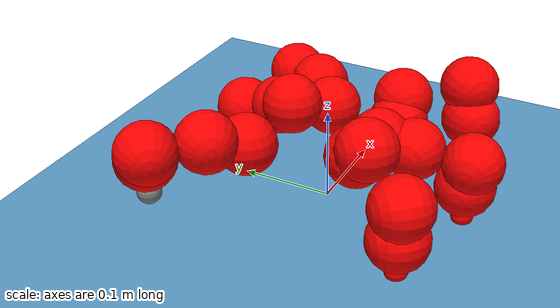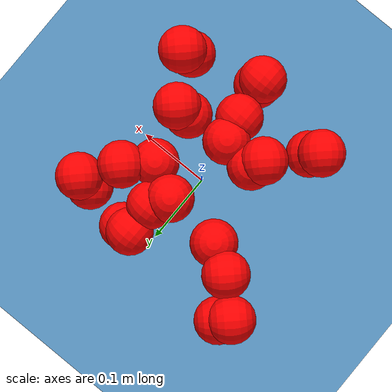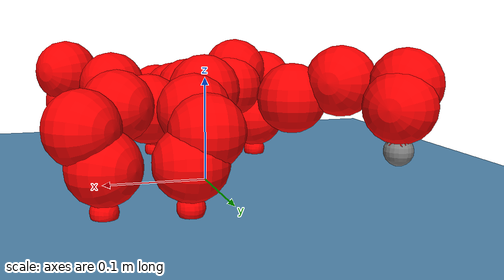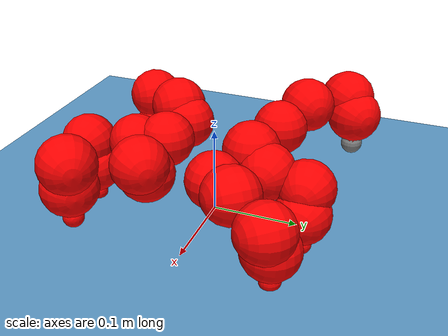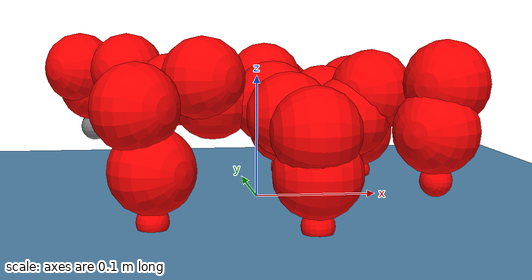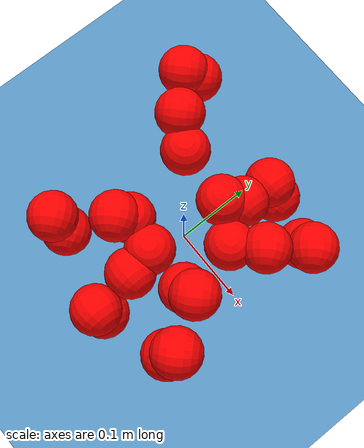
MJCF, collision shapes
<mujoco model="Golem">
  <compiler angle="radian" assetdir="assets" balanceinertia="true" inertiafromgeom="false"/>

  <option timestep="0.005" density="1.2" viscosity="2e-05"/>

  <size nkey="1"/>

  <visual>
    <quality shadowsize="8192"/>
    <map shadowclip="0.5"/>
  </visual>

  <default>
    <default class="/">
      <joint armature="0.01" damping="0.01" frictionloss="0.01"/>
      <geom contype="0" conaffinity="0" group="1" solref="-1000 -80"/>
      <site size="0.01 0.005 0.005" group="5"/>
      <general forcelimited="true" biastype="affine" gainprm="25" biasprm="0 -25 -0.5"/>
      <default class="visual">
        <geom type="mesh" group="2"/>
      </default>
      <default class="collision">
        <geom group="3"/>
      </default>
      <default class="foot">
        <geom size="0.01 0 0" condim="6" group="4" priority="1" solimp="0.015 1 0.01"/>
      </default>
      <default class="reward_collision_sphere">
        <geom group="5" rgba="1 0 0 1"/>
      </default>
    </default>
  </default>

  <asset>
    <texture type="skybox" colorspace="auto" name="//unnamed_texture_0" builtin="gradient" rgb1="0.95 0.95 0.95" rgb2="0.95 0.95 0.95" width="100" height="600"/>
    <texture type="2d" colorspace="auto" name="texplane" builtin="checker" rgb1="0.345 0.575 0.748" rgb2="0.345 0.575 0.748" markrgb="1 1 1" width="512" height="512"/>
    <material name="MatPlane" class="/" texture="texplane" texuniform="true" texrepeat="2 2" specular="0.9"/>
    <mesh name="body" class="/" file="body.stl" scale="0.001 0.001 0.001"/>
    <mesh name="coxa" class="/" file="coxa.stl" scale="0.001 0.001 0.001"/>
    <mesh name="femur" class="/" file="femur.stl" scale="0.001 0.001 0.001"/>
    <mesh name="tibia" class="/" file="tibia.stl" scale="0.001 0.001 0.001"/>
    <mesh name="tarsus" class="/" file="tarsus.stl" scale="0.001 0.001 0.001"/>
  </asset>

  <worldbody>
    <geom name="floor" class="/" size="100 100 0.125" type="plane" group="0" material="MatPlane"/>
    <light name="toplight_shadow" class="/" pos="0 0 5" dir="0.0990148 0.0990148 -0.990148" type="directional" ambient="0.04 0.04 0.04" diffuse="0.55 0.55 0.55" specular="0.12 0.12 0.12"/>
    <light name="toplight_fill" class="/" pos="0 0 5" dir="0.0990148 0.0990148 -0.990148" type="directional" castshadow="false" ambient="0.04 0.04 0.04" diffuse="0.3 0.3 0.3" specular="0.08 0.08 0.08"/>
    <body name="trunk" pos="-0.00256804 0.00249443 -0.00879458" quat="0.999951 0.00816782 -0.00364798 -0.00417228">
      <inertial pos="-0.00953067 0.00286206 -0.00728456" quat="0.999973 -0.00390319 0.00238413 -0.00579725" mass="1.50528" diaginertia="4.05682e-05 0.000802449 0.0660759"/>
      <joint name="//unnamed_joint_0" type="free"/>
      <geom name="//unnamed_geom_1" class="/" pos="0 0 0.0948505" quat="1 0 0 0" type="mesh" rgba="0.9 0.9 0.9 1" mesh="body"/>
      <site name="imu" class="/" pos="-0.0504391 0.0671318 0.131451" size="0.00799325"/>
      <camera name="track" class="/" pos="0 -1.15779 0" quat="0.707107 0.707107 0 0" mode="trackcom"/>
      <camera name="ego_camera" class="/" pos="0.043815 0 0.148204" quat="-0.5 -0.5 0.5 0.5"/>
      <body name="coxa_RR" pos="-0.0444566 -0.0592736 0.0965592" quat="0.380883 -0.000291197 -0.00959346 -0.924573">
        <inertial pos="0.00474626 0.00329666 -0.015824" quat="0.997442 -0.021952 0.0198544 -0.0650602" mass="0.0898377" diaginertia="3.57364e-05 0.000492203 0.0602064"/>
        <joint name="coxa_joint_RR" class="/" pos="0 0 0" axis="-0.0138436 0.0279036 -0.999515" range="-2.81874 3.5002" armature="0.00855501" damping="0" frictionloss="0.00256163"/>
        <geom name="//unnamed_geom_2" class="/" type="mesh" rgba="0.2 0.2 0.2 1" mesh="coxa"/>
        <geom name="//unnamed_geom_3" class="reward_collision_sphere" size="0.031973" pos="-0.0101112 0 0"/>
        <body name="femur_RR" pos="0.00658336 0.00464465 0.0160763" quat="0.50094 -0.497119 0.502294 0.499633">
          <inertial pos="-0.00230329 -0.00440581 0.0082661" quat="0.999608 0.0242172 -0.00240996 0.0138466" mass="0.092518" diaginertia="3.56606e-05 0.000527946 0.0776381"/>
          <joint name="femur_joint_RR" class="/" pos="0 0 0" axis="-0.053156 -0.028978 -0.998166" range="-3.49888 3.0438" armature="0.0144622" damping="0.0679853" frictionloss="0.0119189"/>
          <geom name="//unnamed_geom_4" class="/" type="mesh" rgba="0.9 0.9 0.9 1" mesh="femur"/>
          <geom name="//unnamed_geom_5" class="reward_collision_sphere" size="0.031973"/>
          <body name="tibia_RR" pos="0.0153055 -0.0771221 0.00499475" quat="-0.00588623 0.999971 -0.00305586 -0.00373791">
            <inertial pos="-0.0164747 -0.0132417 0.000503898" quat="0.999588 -0.0121529 -0.0257518 -0.00350689" mass="0.0803946" diaginertia="4.84626e-05 0.000664873 0.0856455"/>
            <joint name="tibia_joint_RR" class="/" pos="0 0 0" axis="-0.0100604 -0.0910131 0.995799" range="-3.50772 3.03975" armature="0.0137748" damping="0.0738294" frictionloss="0.0109252"/>
            <geom name="//unnamed_geom_6" class="/" type="mesh" rgba="0.2 0.2 0.2 1" mesh="tibia"/>
            <geom name="//unnamed_geom_7" class="reward_collision_sphere" size="0.031973"/>
            <body name="tarsus_RR" pos="0.0452739 -0.011989 -0.00341035" quat="0.999986 -0.00490457 -0.00124746 -0.00180149">
              <inertial pos="0.0165156 0.00661387 -0.00668573" quat="0.510708 0.483716 0.496115 0.508986" mass="0.091566" diaginertia="3.07822e-05 0.000634191 0.0495144"/>
              <joint name="tarsus_joint_RR" class="/" pos="0 0 0" axis="0.028865 0.077778 0.996553" range="-2.89755 3.28359" armature="0.0109466" damping="0" frictionloss="0.00486819"/>
              <geom name="//unnamed_geom_8" class="/" type="mesh" rgba="0.9 0.9 0.9 1" mesh="tarsus"/>
              <geom name="foot_1" class="foot" size="0.00494876" pos="0.0377483 0 0" quat="0 -0.707107 0 0.707107"/>
              <geom name="//unnamed_geom_10" class="reward_collision_sphere" size="0.031973"/>
              <geom name="//unnamed_geom_11" class="reward_collision_sphere" size="0.0119899" pos="0.0362317 0 0"/>
              <site name="foot_1" class="foot" pos="0.0377483 0 0" quat="0 -0.707107 0 0.707107" size="0.00799325"/>
            </body>
          </body>
        </body>
      </body>
      <body name="coxa_RM" pos="0.00852621 -0.0676718 0.0928976" quat="0.711785 -0.00583136 -0.00179179 -0.702371">
        <inertial pos="-0.0121112 0.0172738 -0.0102441" quat="0.999589 -0.000955268 0.0245623 -0.0147791" mass="0.13874" diaginertia="5.98739e-05 0.000771317 0.0841539"/>
        <joint name="coxa_joint_RM" class="/" pos="0 0 0" axis="-0.0616376 0.0594578 -0.996326" range="-3.08613 2.80904" armature="0.00108306" damping="0.00524993" frictionloss="0.0140005"/>
        <geom name="//unnamed_geom_12" class="/" type="mesh" rgba="0.2 0.2 0.2 1" mesh="coxa"/>
        <geom name="//unnamed_geom_13" class="reward_collision_sphere" size="0.031973" pos="-0.0101112 0 0"/>
        <body name="femur_RM" pos="0.0254064 0.00675676 -0.00587509" quat="0.501089 -0.500769 0.498545 0.499592">
          <inertial pos="-0.0141174 -0.00880423 -0.00641102" quat="0.999042 0.041571 0.0136292 0.00129611" mass="0.0703457" diaginertia="4.3346e-05 0.000599837 0.0660501"/>
          <joint name="femur_joint_RM" class="/" pos="0 0 0" axis="0.00398261 0.0516652 -0.998657" range="-2.8909 3.22995" armature="0.0110431" damping="0" frictionloss="0.00216364"/>
          <geom name="//unnamed_geom_14" class="/" type="mesh" rgba="0.9 0.9 0.9 1" mesh="femur"/>
          <geom name="//unnamed_geom_15" class="reward_collision_sphere" size="0.031973"/>
          <body name="tibia_RM" pos="0.00608294 -0.0594124 0.00789544" quat="-0.00181303 0.999994 0.00126222 0.00258559">
            <inertial pos="-0.0109954 0.00145266 0.0174774" quat="0.996437 -0.0436454 -0.000482544 -0.0721718" mass="0.102868" diaginertia="3.19565e-05 0.0005746 0.0535775"/>
            <joint name="tibia_joint_RM" class="/" pos="0 0 0" axis="0.00047097 -0.000723207 1" stiffness="0.00822026" range="-3.29789 3.36827" armature="0.0017079" damping="0" frictionloss="0.000292444"/>
            <geom name="//unnamed_geom_16" class="/" type="mesh" rgba="0.2 0.2 0.2 1" mesh="tibia"/>
            <geom name="//unnamed_geom_17" class="reward_collision_sphere" size="0.031973"/>
            <body name="tarsus_RM" pos="0.0300376 -0.00654276 -0.00262391" quat="1 -0.000365015 -0.000456458 0.000498559">
              <inertial pos="0.00537261 -0.00339342 0.0067263" quat="0.460697 0.555943 0.504031 0.473961" mass="0.0926017" diaginertia="3.71348e-05 0.000561789 0.0850257"/>
              <joint name="tarsus_joint_RM" class="/" pos="0 0 0" axis="-0.00998037 -0.0111939 0.999888" range="-3.50875 2.89004" armature="0.000583621" damping="0.0211719" frictionloss="0.00595941"/>
              <geom name="//unnamed_geom_18" class="/" type="mesh" rgba="0.9 0.9 0.9 1" mesh="tarsus"/>
              <geom name="foot_2" class="foot" size="0.00257189" pos="0.0377483 0 0" quat="0 -0.707107 0 0.707107"/>
              <geom name="//unnamed_geom_20" class="reward_collision_sphere" size="0.031973"/>
              <geom name="//unnamed_geom_21" class="reward_collision_sphere" size="0.0119899" pos="0.0362317 0 0"/>
              <site name="foot_2" class="foot" pos="0.0377483 0 0" quat="0 -0.707107 0 0.707107" size="0.00799325"/>
            </body>
          </body>
        </body>
      </body>
      <body name="coxa_RF" pos="0.0768239 -0.0602568 0.0807826" quat="0.923731 -0.000781694 0.00116075 -0.383039">
        <inertial pos="0.0153886 0.0199921 -0.0142545" quat="0.997169 -0.00344332 0.0599321 -0.0452699" mass="0.110516" diaginertia="3.41475e-05 0.000563811 0.0687719"/>
        <joint name="coxa_joint_RF" class="/" pos="0 0 0" axis="-0.0239682 0.0117876 -0.999643" range="-2.9087 2.77672" armature="0.0137082" damping="0" frictionloss="0.0106946"/>
        <geom name="//unnamed_geom_22" class="/" type="mesh" rgba="0.2 0.2 0.2 1" mesh="coxa"/>
        <geom name="//unnamed_geom_23" class="reward_collision_sphere" size="0.031973" pos="-0.0101112 0 0"/>
        <body name="femur_RF" pos="0.000347803 0.0140859 0.0195459" quat="0.501673 -0.494629 0.50628 0.49734">
          <inertial pos="0.00149191 0.015248 -0.0178788" quat="0.995726 0.0609742 0.0690258 -0.00688549" mass="0.118412" diaginertia="5.33074e-05 0.00083615 0.0823657"/>
          <joint name="femur_joint_RF" class="/" pos="0 0 0" axis="-0.0259799 0.0451082 -0.998644" range="-3.43428 3.14129" armature="0.00402057" damping="0.0672341" frictionloss="0.015125"/>
          <geom name="//unnamed_geom_24" class="/" type="mesh" rgba="0.9 0.9 0.9 1" mesh="femur"/>
          <geom name="//unnamed_geom_25" class="reward_collision_sphere" size="0.031973"/>
          <body name="tibia_RF" pos="-0.0105413 -0.0718654 -0.0120651" quat="0.00128718 0.999971 0.00118607 0.00740948">
            <inertial pos="0.00353173 -0.0130435 0.0107132" quat="0.997347 -0.0655532 -0.0158753 -0.0273969" mass="0.0982138" diaginertia="4.16964e-05 0.000743813 0.0882398"/>
            <joint name="tibia_joint_RF" class="/" pos="0 0 0" axis="0.0341085 0.0788643 0.996302" range="-2.9719 3.21141" armature="0.0127059" damping="0" frictionloss="0.00813621"/>
            <geom name="//unnamed_geom_26" class="/" type="mesh" rgba="0.2 0.2 0.2 1" mesh="tibia"/>
            <geom name="//unnamed_geom_27" class="reward_collision_sphere" size="0.031973"/>
            <body name="tarsus_RF" pos="0.0335795 -0.000595664 0.012823" quat="0.999961 0.000923329 -0.00589684 0.0065754">
              <inertial pos="0.0378371 0.00153153 -0.0196413" quat="0.547113 0.461169 0.525199 0.460604" mass="0.146134" diaginertia="4.14451e-05 0.000870272 0.0820269"/>
              <joint name="tarsus_joint_RF" class="/" pos="0 0 0" axis="0.0333418 0.0859933 0.995738" range="-3.51045 2.95984" armature="0.00841691" damping="0" frictionloss="0.00218219"/>
              <geom name="//unnamed_geom_28" class="/" type="mesh" rgba="0.9 0.9 0.9 1" mesh="tarsus"/>
              <geom name="foot_3" class="foot" size="0.0050976" pos="0.0377483 0 0" quat="0 -0.707107 0 0.707107"/>
              <geom name="//unnamed_geom_30" class="reward_collision_sphere" size="0.031973"/>
              <geom name="//unnamed_geom_31" class="reward_collision_sphere" size="0.0119899" pos="0.0362317 0 0"/>
              <site name="foot_3" class="foot" pos="0.0377483 0 0" quat="0 -0.707107 0 0.707107" size="0.00799325"/>
            </body>
          </body>
        </body>
      </body>
      <body name="coxa_LR" pos="-0.0715373 0.0628764 0.0934086" quat="0.388502 0.00261128 0.00598639 0.921425">
        <inertial pos="-0.01743 -0.00337192 0.0138922" quat="0.996897 -0.0374747 0.00654572 0.0689209" mass="0.0983027" diaginertia="4.05384e-05 0.000629152 0.0691779"/>
        <joint name="coxa_joint_LR" class="/" pos="0 0 0" axis="-0.0128989 0.0905714 -0.995806" stiffness="0.0333721" range="-2.97503 3.01871" armature="0.0129084" damping="0.038442" frictionloss="0.00955874"/>
        <geom name="//unnamed_geom_32" class="/" type="mesh" rgba="0.2 0.2 0.2 1" mesh="coxa"/>
        <geom name="//unnamed_geom_33" class="reward_collision_sphere" size="0.031973" pos="-0.0101112 0 0"/>
        <body name="femur_LR" pos="0.0321764 0.0120832 0.01643" quat="0.496662 -0.495232 0.5017 0.506329">
          <inertial pos="-0.0105293 0.0067655 -0.00378769" quat="0.999804 0.00161038 -0.0167591 0.0103699" mass="0.119756" diaginertia="4.72596e-05 0.000717541 0.0652168"/>
          <joint name="femur_joint_LR" class="/" pos="0 0 0" axis="-0.01662 0.00127159 0.999861" range="-3.38463 2.74182" armature="0.00946996" damping="0" frictionloss="0.000262286"/>
          <geom name="//unnamed_geom_34" class="/" type="mesh" rgba="0.9 0.9 0.9 1" mesh="femur"/>
          <geom name="//unnamed_geom_35" class="reward_collision_sphere" size="0.031973"/>
          <body name="tibia_LR" pos="-4.7462e-05 -0.0581251 0.00244123" quat="0.00192732 0.999994 -0.00179295 -0.00205578">
            <inertial pos="-0.00939379 0.00815556 -0.00766973" quat="0.998946 0.00183992 -0.0418284 0.0188384" mass="0.130112" diaginertia="4.76428e-05 0.000580208 0.0777575"/>
            <joint name="tibia_joint_LR" class="/" pos="0 0 0" axis="0.00538355 0.00284116 -0.999981" stiffness="0.0426866" range="-3.32983 3.48462" armature="0.0160426" damping="0" frictionloss="0.0130727"/>
            <geom name="//unnamed_geom_36" class="/" type="mesh" rgba="0.2 0.2 0.2 1" mesh="tibia"/>
            <geom name="//unnamed_geom_37" class="reward_collision_sphere" size="0.031973"/>
            <body name="tarsus_LR" pos="0.0171839 6.0868e-05 0.0170648" quat="0.99999 0.00172922 -0.00299118 0.00294784">
              <inertial pos="0.0152071 0.0106124 -0.000192004" quat="0.491819 0.489693 0.498456 0.519477" mass="0.0882854" diaginertia="3.969e-05 0.000662627 0.0606812"/>
              <joint name="tarsus_joint_LR" class="/" pos="0 0 0" axis="-0.0430623 0.0147679 -0.998963" stiffness="0.0577542" range="-3.50037 3.18252" armature="0.00688361" damping="0.100703" frictionloss="0.00515464"/>
              <geom name="//unnamed_geom_38" class="/" type="mesh" rgba="0.9 0.9 0.9 1" mesh="tarsus"/>
              <geom name="foot_4" class="foot" size="0.0128367" pos="0.0377483 0 0" quat="0.707107 0 -0.707107 0"/>
              <geom name="//unnamed_geom_40" class="reward_collision_sphere" size="0.031973"/>
              <geom name="//unnamed_geom_41" class="reward_collision_sphere" size="0.0119899" pos="0.0362317 0 0"/>
              <site name="foot_4" class="foot" pos="0.0377483 0 0" quat="0.707107 0 -0.707107 0" size="0.00799325"/>
            </body>
          </body>
        </body>
      </body>
      <body name="coxa_LM" pos="0.0163559 0.0580561 0.101385" quat="0.70702 -0.00932732 0.00342912 0.707124">
        <inertial pos="0.0113567 0.000652021 -0.0136011" quat="0.999491 -0.0163 -0.0201719 0.0185666" mass="0.0866008" diaginertia="2.48079e-05 0.00049486 0.0457662"/>
        <joint name="coxa_joint_LM" class="/" pos="0 0 0" axis="-0.00459633 -0.0168815 -0.999847" range="-2.81226 3.30048" armature="0.0145564" damping="0" frictionloss="0.00162814"/>
        <geom name="//unnamed_geom_42" class="/" type="mesh" rgba="0.2 0.2 0.2 1" mesh="coxa"/>
        <geom name="//unnamed_geom_43" class="reward_collision_sphere" size="0.031973" pos="-0.0101112 0 0"/>
        <body name="femur_LM" pos="0.0129326 -0.0145625 -0.0144224" quat="0.500343 -0.499102 0.500145 0.500408">
          <inertial pos="-0.00225209 0.0149106 0.00259671" quat="0.997709 -0.0253181 -0.0344233 -0.0524452" mass="0.150226" diaginertia="6.02747e-05 0.000759299 0.0831401"/>
          <joint name="femur_joint_LM" class="/" pos="0 0 0" axis="0.0429042 0.0404068 0.998262" range="-3.31522 3.25887" armature="0.0135593" damping="0" frictionloss="0.00238328"/>
          <geom name="//unnamed_geom_44" class="/" type="mesh" rgba="0.9 0.9 0.9 1" mesh="femur"/>
          <geom name="//unnamed_geom_45" class="reward_collision_sphere" size="0.031973"/>
          <body name="tibia_LM" pos="0.0117985 -0.0441426 0.000809628" quat="0.000193312 0.999994 -0.00273327 0.00226532">
            <inertial pos="0.0185926 -0.0199541 -0.00638534" quat="0.999997 0.00049752 0.000208708 0.00250989" mass="0.0735827" diaginertia="4.71133e-05 0.00055332 0.0594329"/>
            <joint name="tibia_joint_LM" class="/" pos="0 0 0" axis="0.00169198 0.00671141 -0.999976" range="-3.44448 3.13912" armature="0.00944071" damping="0.0110893" frictionloss="0.0132431"/>
            <geom name="//unnamed_geom_46" class="/" type="mesh" rgba="0.2 0.2 0.2 1" mesh="tibia"/>
            <geom name="//unnamed_geom_47" class="reward_collision_sphere" size="0.031973"/>
            <body name="tarsus_LM" pos="0.0249126 0.000395479 0.0131717" quat="0.999997 0.00102063 0.00222103 0.000782461">
              <inertial pos="0.0310939 0.00744604 0.00243915" quat="0.518409 0.494789 0.509583 0.476195" mass="0.108843" diaginertia="3.64485e-05 0.000584 0.0516616"/>
              <joint name="tarsus_joint_LM" class="/" pos="0 0 0" axis="-0.0289601 -0.075409 -0.996732" stiffness="0.0184603" range="-3.32943 3.44054" armature="0.00840122" damping="0" frictionloss="0.0144824"/>
              <geom name="//unnamed_geom_48" class="/" type="mesh" rgba="0.9 0.9 0.9 1" mesh="tarsus"/>
              <geom name="foot_5" class="foot" size="0.00588585" pos="0.0377483 0 0" quat="0.707107 0 -0.707107 0"/>
              <geom name="//unnamed_geom_50" class="reward_collision_sphere" size="0.031973"/>
              <geom name="//unnamed_geom_51" class="reward_collision_sphere" size="0.0119899" pos="0.0362317 0 0"/>
              <site name="foot_5" class="foot" pos="0.0377483 0 0" quat="0.707107 0 -0.707107 0" size="0.00799325"/>
            </body>
          </body>
        </body>
      </body>
      <body name="coxa_LF" pos="0.0697952 0.0303238 0.0833517" quat="0.925585 -0.00377819 -0.00173523 0.378517">
        <inertial pos="0.00654972 0.0150572 0.00734206" quat="0.999025 -0.0347681 0.0188754 0.0195767" mass="0.115668" diaginertia="5.32245e-05 0.000941295 0.0881922"/>
        <joint name="coxa_joint_LF" class="/" pos="0 0 0" axis="-3.49989e-05 0.00123599 -0.999999" range="-2.84722 3.34946" armature="0.00633653" damping="0.0589558" frictionloss="0.0029503"/>
        <geom name="//unnamed_geom_52" class="/" type="mesh" rgba="0.2 0.2 0.2 1" mesh="coxa"/>
        <geom name="//unnamed_geom_53" class="reward_collision_sphere" size="0.031973" pos="-0.0101112 0 0"/>
        <body name="femur_LF" pos="0.0345699 -0.000276802 0.00630911" quat="0.495411 -0.503186 0.497856 0.503499">
          <inertial pos="0.00188914 0.00249874 0.00665508" quat="0.995246 0.0630341 0.0737646 -0.00841722" mass="0.105409" diaginertia="5.08726e-05 0.000829363 0.0872945"/>
          <joint name="femur_joint_LF" class="/" pos="0 0 0" axis="0.0358811 -0.0546437 0.997861" stiffness="0.0136137" range="-3.23955 3.37755" armature="0.010326" damping="0" frictionloss="0.0159624"/>
          <geom name="//unnamed_geom_54" class="/" type="mesh" rgba="0.9 0.9 0.9 1" mesh="femur"/>
          <geom name="//unnamed_geom_55" class="reward_collision_sphere" size="0.031973"/>
          <body name="tibia_LF" pos="0.0111009 -0.0570454 0.0093558" quat="-9.67147e-05 0.999998 0.000446831 0.00192237">
            <inertial pos="-0.00704351 0.00677741 0.00460033" quat="0.998067 -0.0230837 -0.0102007 0.0567836" mass="0.082873" diaginertia="4.8097e-05 0.000741152 0.0817537"/>
            <joint name="tibia_joint_LF" class="/" pos="0 0 0" axis="0.0160545 -0.0620749 -0.997942" range="-2.75611 3.03555" armature="0.00230298" damping="0" frictionloss="0.0137606"/>
            <geom name="//unnamed_geom_56" class="/" type="mesh" rgba="0.2 0.2 0.2 1" mesh="tibia"/>
            <geom name="//unnamed_geom_57" class="reward_collision_sphere" size="0.031973"/>
            <body name="tarsus_LF" pos="0.0313975 -0.0108269 -0.0125162" quat="0.999997 0.00199385 0.0010885 9.96313e-05">
              <inertial pos="0.0317683 -0.000790995 -0.0189197" quat="0.500352 0.509683 0.498591 0.491201" mass="0.127616" diaginertia="4.33471e-05 0.000732308 0.0748772"/>
              <joint name="tarsus_joint_LF" class="/" pos="0 0 0" axis="-0.0294705 -0.0707346 -0.99706" range="-3.11984 2.86995" armature="0.00658019" damping="0.101278" frictionloss="0.00526389"/>
              <geom name="//unnamed_geom_58" class="/" type="mesh" rgba="0.9 0.9 0.9 1" mesh="tarsus"/>
              <geom name="foot_6" class="foot" size="0.00924763" pos="0.0377483 0 0" quat="0.707107 0 -0.707107 0"/>
              <geom name="//unnamed_geom_60" class="reward_collision_sphere" size="0.031973"/>
              <geom name="//unnamed_geom_61" class="reward_collision_sphere" size="0.0119899" pos="0.0362317 0 0"/>
              <site name="foot_6" class="foot" pos="0.0377483 0 0" quat="0.707107 0 -0.707107 0" size="0.00799325"/>
            </body>
          </body>
        </body>
      </body>
    </body>
  </worldbody>

  <contact>
    <pair class="/" geom1="floor" geom2="foot_1" name="//unnamed_contact_0"/>
    <pair class="/" geom1="floor" geom2="foot_2" name="//unnamed_contact_1"/>
    <pair class="/" geom1="floor" geom2="foot_3" name="//unnamed_contact_2"/>
    <pair class="/" geom1="floor" geom2="foot_4" name="//unnamed_contact_3"/>
    <pair class="/" geom1="floor" geom2="foot_5" name="//unnamed_contact_4"/>
    <pair class="/" geom1="floor" geom2="foot_6" name="//unnamed_contact_5"/>
  </contact>

  <actuator>
    <general name="coxa_joint_RR" class="/" joint="coxa_joint_RR" forcerange="-2.53702 2.53702" gainprm="29.5664" biasprm="0 -29.5664 -0.586294"/>
    <general name="femur_joint_RR" class="/" joint="femur_joint_RR" forcerange="-3.32186 3.32186" gainprm="29.5664" biasprm="0 -29.5664 -0.586294"/>
    <general name="tibia_joint_RR" class="/" joint="tibia_joint_RR" forcerange="-7.76273 7.76273" gainprm="29.5664" biasprm="0 -29.5664 -0.586294"/>
    <general name="tarsus_joint_RR" class="/" joint="tarsus_joint_RR" forcerange="-4.10195 4.10195" gainprm="29.5664" biasprm="0 -29.5664 -0.586294"/>
    <general name="coxa_joint_RM" class="/" joint="coxa_joint_RM" forcerange="-2.49956 2.49956" gainprm="29.5664" biasprm="0 -29.5664 -0.586294"/>
    <general name="femur_joint_RM" class="/" joint="femur_joint_RM" forcerange="-2.21846 2.21846" gainprm="29.5664" biasprm="0 -29.5664 -0.586294"/>
    <general name="tibia_joint_RM" class="/" joint="tibia_joint_RM" forcerange="-8.4022 8.4022" gainprm="29.5664" biasprm="0 -29.5664 -0.586294"/>
    <general name="tarsus_joint_RM" class="/" joint="tarsus_joint_RM" forcerange="-1.63177 1.63177" gainprm="29.5664" biasprm="0 -29.5664 -0.586294"/>
    <general name="coxa_joint_RF" class="/" joint="coxa_joint_RF" forcerange="-1.95192 1.95192" gainprm="29.5664" biasprm="0 -29.5664 -0.586294"/>
    <general name="femur_joint_RF" class="/" joint="femur_joint_RF" forcerange="-9.73454 9.73454" gainprm="29.5664" biasprm="0 -29.5664 -0.586294"/>
    <general name="tibia_joint_RF" class="/" joint="tibia_joint_RF" forcerange="-8.30462 8.30462" gainprm="29.5664" biasprm="0 -29.5664 -0.586294"/>
    <general name="tarsus_joint_RF" class="/" joint="tarsus_joint_RF" forcerange="-4.70104 4.70104" gainprm="29.5664" biasprm="0 -29.5664 -0.586294"/>
    <general name="coxa_joint_LR" class="/" joint="coxa_joint_LR" forcerange="-3.14255 3.14255" gainprm="29.5664" biasprm="0 -29.5664 -0.586294"/>
    <general name="femur_joint_LR" class="/" joint="femur_joint_LR" forcerange="-9.04884 9.04884" gainprm="29.5664" biasprm="0 -29.5664 -0.586294"/>
    <general name="tibia_joint_LR" class="/" joint="tibia_joint_LR" forcerange="-8.35272 8.35272" gainprm="29.5664" biasprm="0 -29.5664 -0.586294"/>
    <general name="tarsus_joint_LR" class="/" joint="tarsus_joint_LR" forcerange="-7.31006 7.31006" gainprm="29.5664" biasprm="0 -29.5664 -0.586294"/>
    <general name="coxa_joint_LM" class="/" joint="coxa_joint_LM" forcerange="-6.10101 6.10101" gainprm="29.5664" biasprm="0 -29.5664 -0.586294"/>
    <general name="femur_joint_LM" class="/" joint="femur_joint_LM" forcerange="-6.05623 6.05623" gainprm="29.5664" biasprm="0 -29.5664 -0.586294"/>
    <general name="tibia_joint_LM" class="/" joint="tibia_joint_LM" forcerange="-10.0183 10.0183" gainprm="29.5664" biasprm="0 -29.5664 -0.586294"/>
    <general name="tarsus_joint_LM" class="/" joint="tarsus_joint_LM" forcerange="-6.03017 6.03017" gainprm="29.5664" biasprm="0 -29.5664 -0.586294"/>
    <general name="coxa_joint_LF" class="/" joint="coxa_joint_LF" forcerange="-2.19426 2.19426" gainprm="29.5664" biasprm="0 -29.5664 -0.586294"/>
    <general name="femur_joint_LF" class="/" joint="femur_joint_LF" forcerange="-2.11342 2.11342" gainprm="29.5664" biasprm="0 -29.5664 -0.586294"/>
    <general name="tibia_joint_LF" class="/" joint="tibia_joint_LF" forcerange="-6.67142 6.67142" gainprm="29.5664" biasprm="0 -29.5664 -0.586294"/>
    <general name="tarsus_joint_LF" class="/" joint="tarsus_joint_LF" forcerange="-7.87162 7.87162" gainprm="29.5664" biasprm="0 -29.5664 -0.586294"/>
  </actuator>

  <sensor>
    <gyro site="imu" name="imu_angular_velocity"/>
    <velocimeter site="imu" name="imu_linear_velocity"/>
    <framelinvel objtype="site" objname="foot_1" name="foot_1_global_linear_velocity"/>
    <framelinvel objtype="site" objname="foot_2" name="foot_2_global_linear_velocity"/>
    <framelinvel objtype="site" objname="foot_3" name="foot_3_global_linear_velocity"/>
    <framelinvel objtype="site" objname="foot_4" name="foot_4_global_linear_velocity"/>
    <framelinvel objtype="site" objname="foot_5" name="foot_5_global_linear_velocity"/>
    <framelinvel objtype="site" objname="foot_6" name="foot_6_global_linear_velocity"/>
  </sensor>

  <keyframe>
    <key name="home" qpos="0 0 0.1457 1 0 0 0 0 0 0 0 0 0 0 0 0 0 0 0 0 0 0 0 0 0 0 0 0 0 0 0"/>
  </keyframe>
</mujoco>
